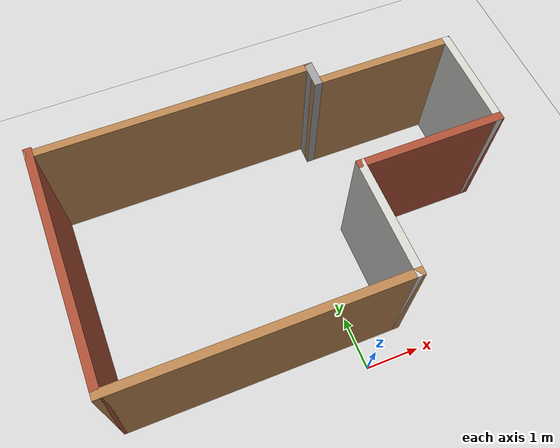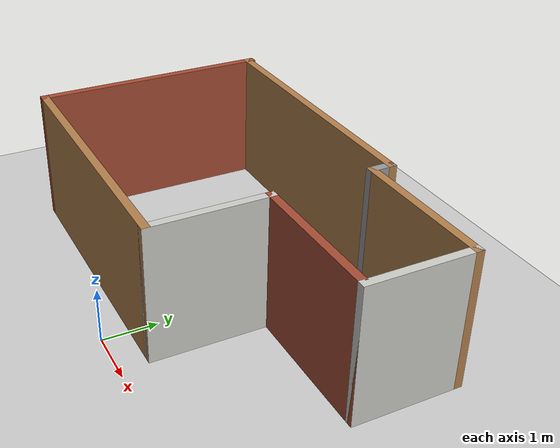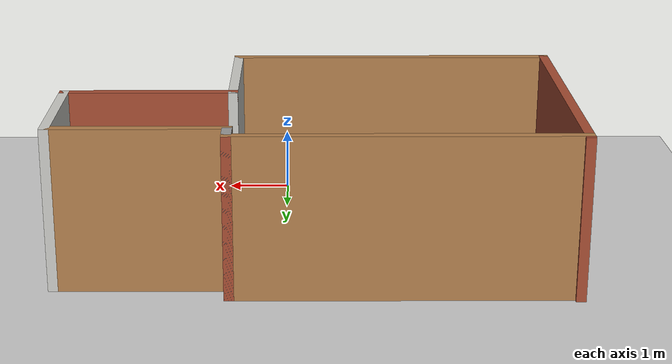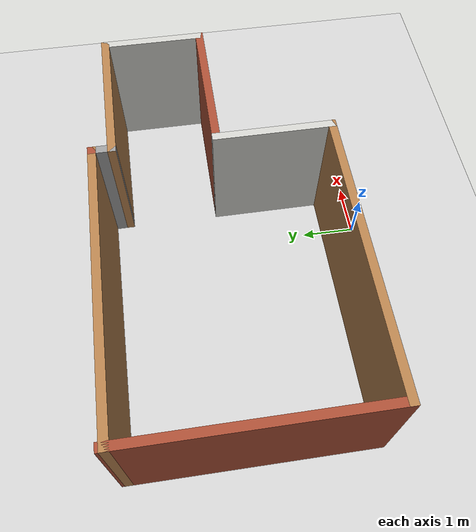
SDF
<sdf version="1.6">
 <world name="default">
  <light name="sun" type="directional">
   <pose>0 0 10 0 -0 0</pose>
   <diffuse>0.8 0.8 0.8 1</diffuse>
   <specular>0.2 0.2 0.2 1</specular>
   <attenuation>
    <range>1000</range>
    <constant>0.9</constant>
    <linear>0.01</linear>
    <quadratic>0.001</quadratic>
   </attenuation>
   <direction>-0.5 0.1 -0.9</direction>
  </light>
  <model name="ground_plane">
   <static>1</static>
   <link name="link">
    <collision name="collision">
     <geometry><plane><normal>0 0 1</normal><size>100 100</size></plane></geometry>
     <surface>
      <contact><collide_bitmask>65535</collide_bitmask></contact>
      <friction><ode><mu>100</mu><mu2>50</mu2></ode></friction>
     </surface>
    </collision>
    <visual name="visual">
     <cast_shadows>0</cast_shadows>
     <geometry><plane><normal>0 0 1</normal><size>100 100</size></plane></geometry>
     <material>
      <script><uri>file://media/materials/scripts/gazebo.material</uri><name>Gazebo/Grey</name></script>
     </material>
    </visual>
   </link>
  </model>
  <gravity>0 0 -9.8</gravity>
  <magnetic_field>6e-06 2.3e-05 -4.2e-05</magnetic_field>
  <atmosphere type="adiabatic"/>
  <physics name="default_physics" default="0" type="ode">
   <max_step_size>0.001</max_step_size>
   <real_time_factor>1</real_time_factor>
   <real_time_update_rate>1000</real_time_update_rate>
  </physics>
  <scene><ambient>0.4 0.4 0.4 1</ambient><background>0.7 0.7 0.7 1</background><shadows>1</shadows></scene>
  <spherical_coordinates>
   <surface_model>EARTH_WGS84</surface_model>
   <latitude_deg>0</latitude_deg>
   <longitude_deg>0</longitude_deg>
   <elevation>0</elevation>
   <heading_deg>0</heading_deg>
  </spherical_coordinates>
  <model name="building.sdf">
   <pose>-0.455301 2.74091 0 0 -0 0</pose>
   <link name="Wall_10">
    <collision name="Wall_10_Collision">
     <geometry><box><size>2.75 0.15 2.5</size></box></geometry>
     <pose>0 0 1.25 0 -0 0</pose>
    </collision>
    <visual name="Wall_10_Visual">
     <pose>0 0 1.25 0 -0 0</pose>
     <geometry><box><size>2.75 0.15 2.5</size></box></geometry>
     <material>
      <script><uri>file://media/materials/scripts/gazebo.material</uri><name>Gazebo/Wood</name></script>
      <ambient>1 1 1 1</ambient>
     </material>
     <meta><layer>0</layer></meta>
    </visual>
    <pose>2.55 1.775 0 0 -0 3.14159</pose>
   </link>
   <link name="Wall_12">
    <collision name="Wall_12_Collision">
     <geometry><box><size>0.15 0.15 2.5</size></box></geometry>
     <pose>0 0 1.25 0 -0 0</pose>
    </collision>
    <visual name="Wall_12_Visual">
     <pose>0 0 1.25 0 -0 0</pose>
     <geometry><box><size>0.15 0.15 2.5</size></box></geometry>
     <material>
      <script><uri>file://media/materials/scripts/gazebo.material</uri><name>Gazebo/Bricks</name></script>
      <ambient>1 1 1 1</ambient>
     </material>
     <meta><layer>0</layer></meta>
    </visual>
    <pose>1.25 2.125 0 0 -0 0</pose>
   </link>
   <link name="Wall_14">
    <collision name="Wall_14_Collision">
     <geometry><box><size>0.5 0.15 2.5</size></box></geometry>
     <pose>0 0 1.25 0 -0 0</pose>
    </collision>
    <visual name="Wall_14_Visual">
     <pose>0 0 1.25 0 -0 0</pose>
     <geometry><box><size>0.5 0.15 2.5</size></box></geometry>
     <material>
      <script><uri>file://media/materials/scripts/gazebo.material</uri><name>Gazebo/Grey</name></script>
      <ambient>1 1 1 1</ambient>
     </material>
     <meta><layer>0</layer></meta>
    </visual>
    <pose>1.25 1.95 0 0 -0 1.5708</pose>
   </link>
   <link name="Wall_15">
    <collision name="Wall_15_Collision">
     <geometry><box><size>5.25 0.15 2.5</size></box></geometry>
     <pose>0 0 1.25 0 -0 0</pose>
    </collision>
    <visual name="Wall_15_Visual">
     <pose>0 0 1.25 0 -0 0</pose>
     <geometry><box><size>5.25 0.15 2.5</size></box></geometry>
     <material>
      <script><uri>file://media/materials/scripts/gazebo.material</uri><name>Gazebo/Wood</name></script>
      <ambient>1 1 1 1</ambient>
     </material>
     <meta><layer>0</layer></meta>
    </visual>
    <pose>-1.3 2.125 0 0 -0 3.14159</pose>
   </link>
   <link name="Wall_5">
    <collision name="Wall_5_Collision">
     <geometry><box><size>4.5 0.15 2.5</size></box></geometry>
     <pose>0 0 1.25 0 -0 0</pose>
    </collision>
    <visual name="Wall_5_Visual">
     <pose>0 0 1.25 0 -0 0</pose>
     <geometry><box><size>4.5 0.15 2.5</size></box></geometry>
     <material>
      <script><uri>file://media/materials/scripts/gazebo.material</uri><name>Gazebo/Bricks</name></script>
      <ambient>1 1 1 1</ambient>
     </material>
     <meta><layer>0</layer></meta>
    </visual>
    <pose>-3.85 0 0 0 0 -1.5708</pose>
   </link>
   <link name="Wall_6">
    <collision name="Wall_6_Collision">
     <geometry><box><size>5.25 0.15 2.5</size></box></geometry>
     <pose>0 0 1.25 0 -0 0</pose>
    </collision>
    <visual name="Wall_6_Visual">
     <pose>0 0 1.25 0 -0 0</pose>
     <geometry><box><size>5.25 0.15 2.5</size></box></geometry>
     <material>
      <script><uri>file://media/materials/scripts/gazebo.material</uri><name>Gazebo/Wood</name></script>
      <ambient>1 1 1 1</ambient>
     </material>
     <meta><layer>0</layer></meta>
    </visual>
    <pose>-1.3 -2.175 0 0 -0 0</pose>
   </link>
   <link name="Wall_7">
    <collision name="Wall_7_Collision">
     <geometry><box><size>2.25 0.15 2.5</size></box></geometry>
     <pose>0 0 1.25 0 -0 0</pose>
    </collision>
    <visual name="Wall_7_Visual">
     <pose>0 0 1.25 0 -0 0</pose>
     <geometry><box><size>2.25 0.15 2.5</size></box></geometry>
     <material>
      <script><uri>file://media/materials/scripts/gazebo.material</uri><name>Gazebo/CeilingTiled</name></script>
      <ambient>1 1 1 1</ambient>
     </material>
     <meta><layer>0</layer></meta>
    </visual>
    <pose>1.25 -1.125 0 0 -0 1.5708</pose>
   </link>
   <link name="Wall_8">
    <collision name="Wall_8_Collision">
     <geometry><box><size>2.75 0.15 2.5</size></box></geometry>
     <pose>0 0 1.25 0 -0 0</pose>
    </collision>
    <visual name="Wall_8_Visual">
     <pose>0 0 1.25 0 -0 0</pose>
     <geometry><box><size>2.75 0.15 2.5</size></box></geometry>
     <material>
      <script><uri>file://media/materials/scripts/gazebo.material</uri><name>Gazebo/Bricks</name></script>
      <ambient>1 1 1 1</ambient>
     </material>
     <meta><layer>0</layer></meta>
    </visual>
    <pose>2.55 -0.075 0 0 -0 0</pose>
   </link>
   <link name="Wall_9">
    <collision name="Wall_9_Collision">
     <geometry><box><size>2 0.15 2.5</size></box></geometry>
     <pose>0 0 1.25 0 -0 0</pose>
    </collision>
    <visual name="Wall_9_Visual">
     <pose>0 0 1.25 0 -0 0</pose>
     <geometry><box><size>2 0.15 2.5</size></box></geometry>
     <material>
      <script><uri>file://media/materials/scripts/gazebo.material</uri><name>Gazebo/CeilingTiled</name></script>
      <ambient>1 1 1 1</ambient>
     </material>
     <meta><layer>0</layer></meta>
    </visual>
    <pose>3.85 0.85 0 0 -0 1.5708</pose>
   </link>
   <static>1</static>
  </model>
 </world>
</sdf>
